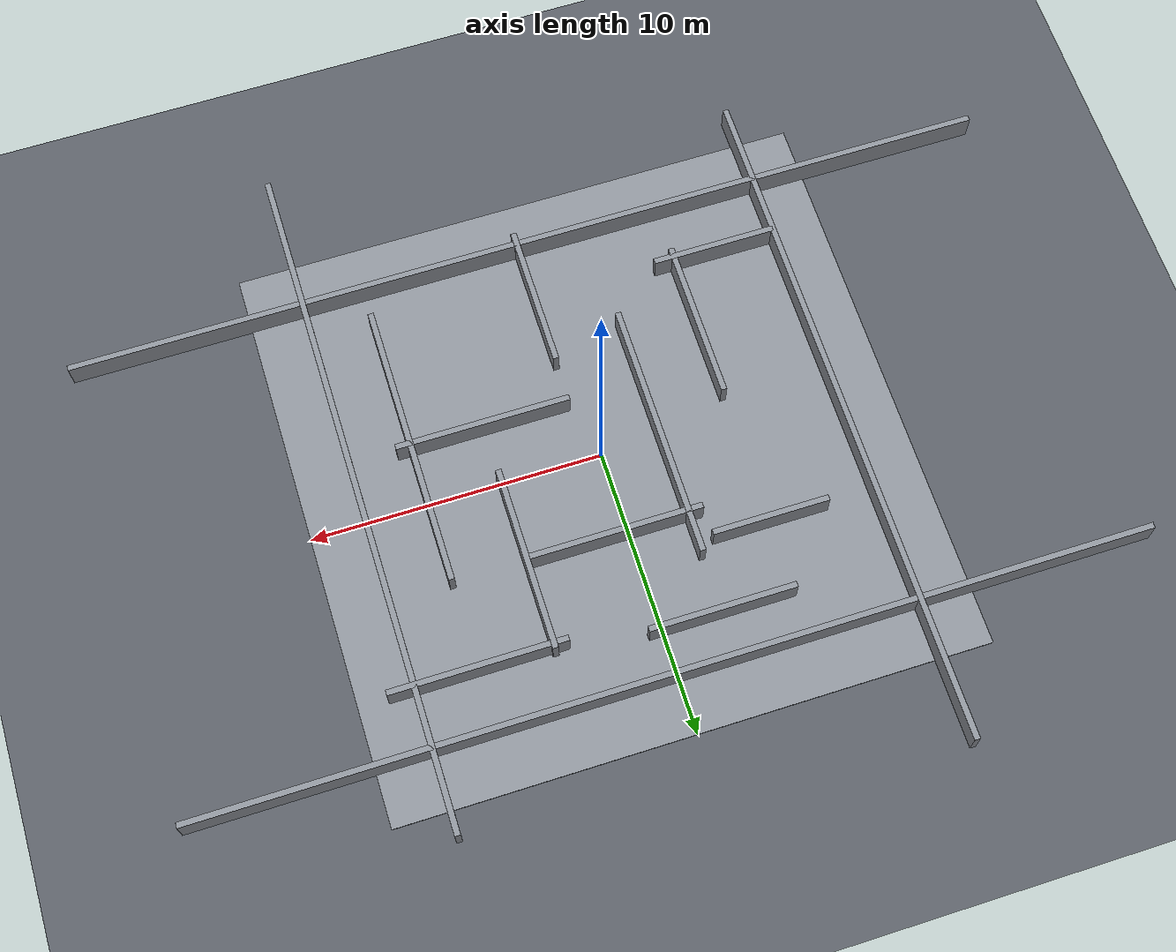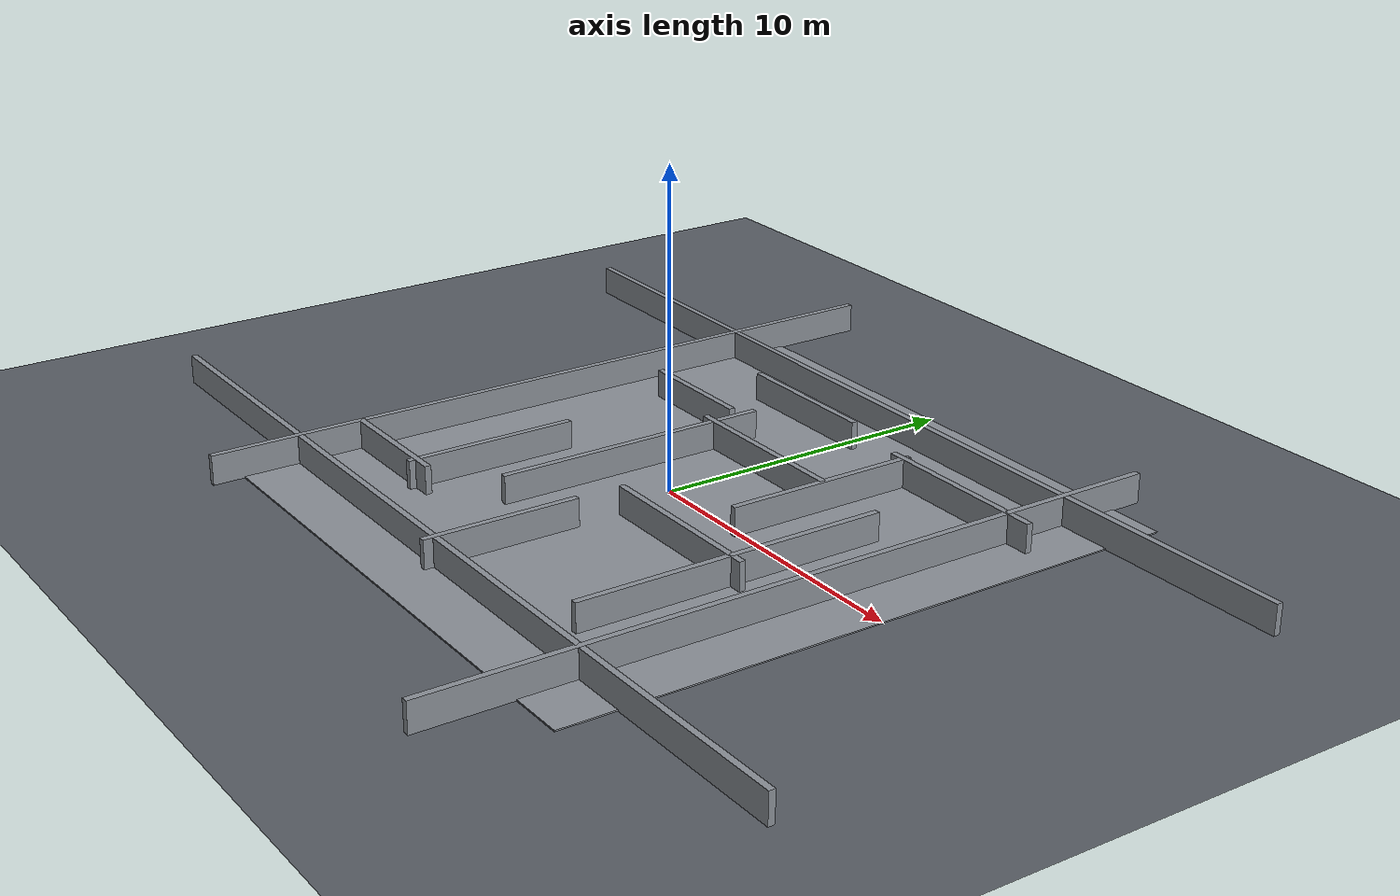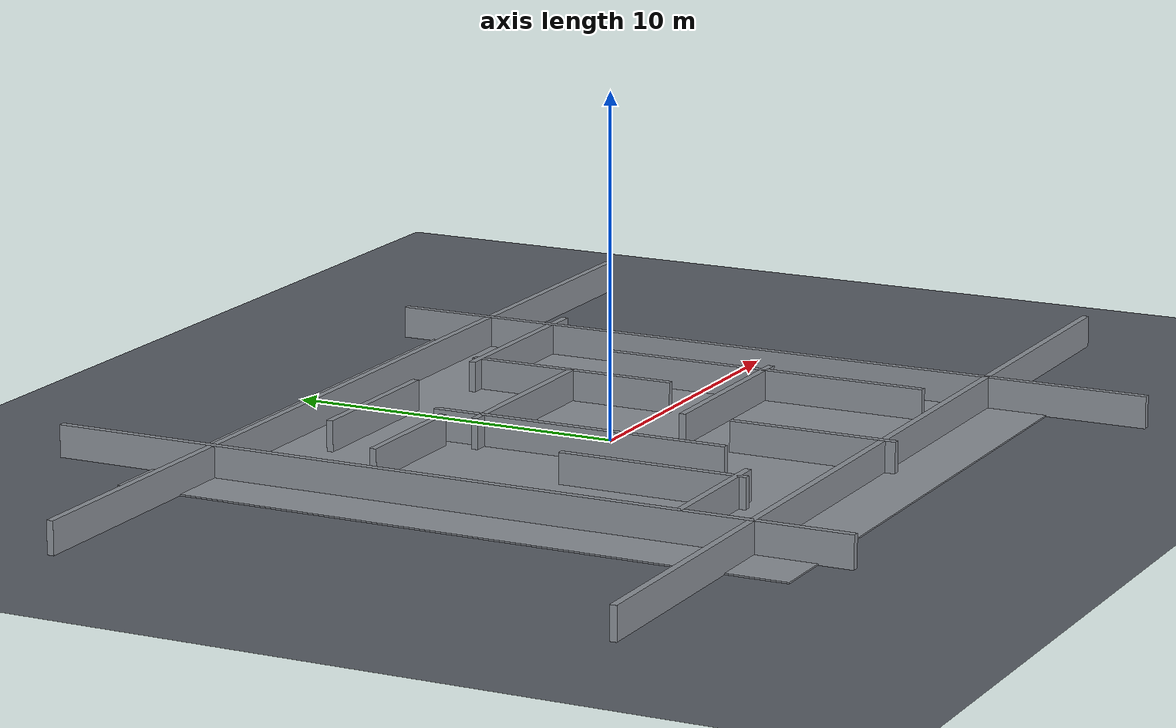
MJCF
<!-- Generated by robot_lab_maps/tools/gen_mjcf_worlds.py from
     maps/nav_maze/worlds/nav_maze.world - do not edit by hand. -->
<mujoco model="nav_maze">
  <option gravity="0 0 -9.81" />
  <compiler angle="radian" />
  <worldbody>
    <geom type="plane" size="100 100 0.1" contype="0" conaffinity="0" rgba="0.35 0.37 0.4 1" />
    <geom pos="0 0 -0.05" quat="1 0 0 0" rgba="0.55 0.57 0.6 1" type="box" size="10 10 0.05" />
    <geom pos="0 -8.1 0" quat="1 0 0 0" rgba="0.55 0.57 0.6 1" type="box" size="16.2 0.1 0.9" />
    <geom pos="0 8.1 0" quat="1 0 0 0" rgba="0.55 0.57 0.6 1" type="box" size="16.2 0.1 0.9" />
    <geom pos="-8.1 1 0" quat="1 0 0 0" rgba="0.55 0.57 0.6 1" type="box" size="0.1 12 0.9" />
    <geom pos="8.1 -1 0" quat="1 0 0 0" rgba="0.55 0.57 0.6 1" type="box" size="0.1 12 0.9" />
    <geom pos="-6 -6 0" quat="1 0 0 0" rgba="0.55 0.57 0.6 1" type="box" size="2.2 0.1 0.9" />
    <geom pos="-4.5 -3.5 0" quat="1 0 0 0" rgba="0.55 0.57 0.6 1" type="box" size="0.1 2.8 0.9" />
    <geom pos="-4.5 4 0" quat="1 0 0 0" rgba="0.55 0.57 0.6 1" type="box" size="2 0.1 0.9" />
    <geom pos="-2 0 0" quat="1 0 0 0" rgba="0.55 0.57 0.6 1" type="box" size="0.1 4.5 0.9" />
    <geom pos="-2 6.5 0" quat="1 0 0 0" rgba="0.55 0.57 0.6 1" type="box" size="2.5 0.1 0.9" />
    <geom pos="0.5 -6 0" quat="1 0 0 0" rgba="0.55 0.57 0.6 1" type="box" size="0.1 2.5 0.9" />
    <geom pos="0.5 3 0" quat="1 0 0 0" rgba="0.55 0.57 0.6 1" type="box" size="3 0.1 0.9" />
    <geom pos="3.5 3 0" quat="1 0 0 0" rgba="0.55 0.57 0.6 1" type="box" size="0.1 3.2 0.9" />
    <geom pos="3.5 -2 0" quat="1 0 0 0" rgba="0.55 0.57 0.6 1" type="box" size="3 0.1 0.9" />
    <geom pos="6 -2 0" quat="1 0 0 0" rgba="0.55 0.57 0.6 1" type="box" size="0.1 5 0.9" />
    <geom pos="6 6 0" quat="1 0 0 0" rgba="0.55 0.57 0.6 1" type="box" size="3 0.1 0.9" />
    <light diffuse="0.8 0.8 0.8" pos="0 0 10" dir="0 0 -1" castshadow="true" />
    <light diffuse="0.3 0.3 0.3" pos="0 -6 6" dir="0 1 -1" />
  </worldbody>
</mujoco>
